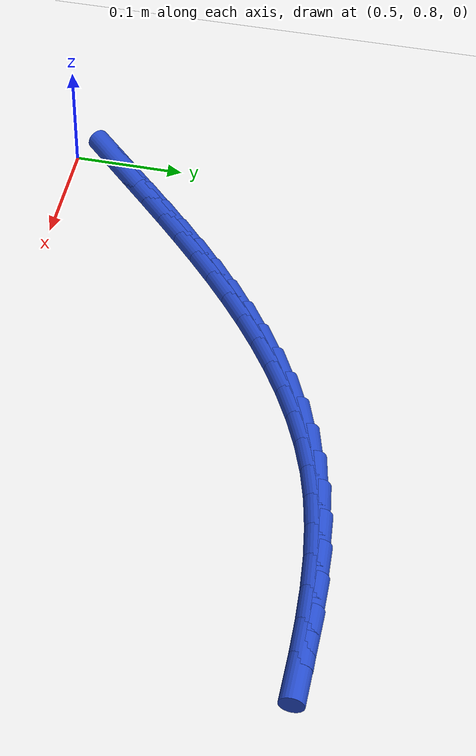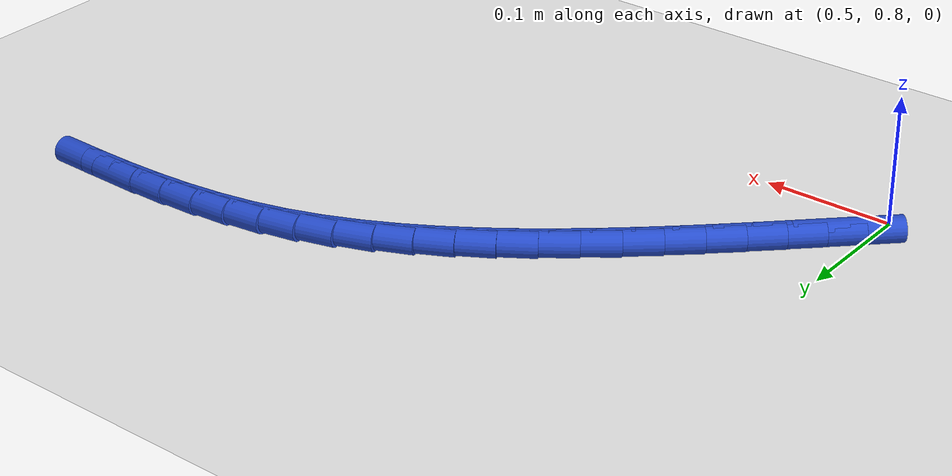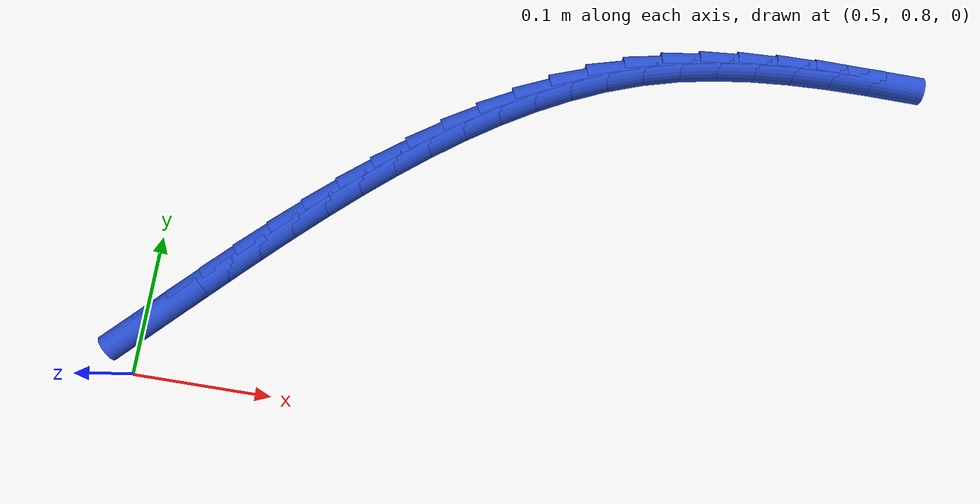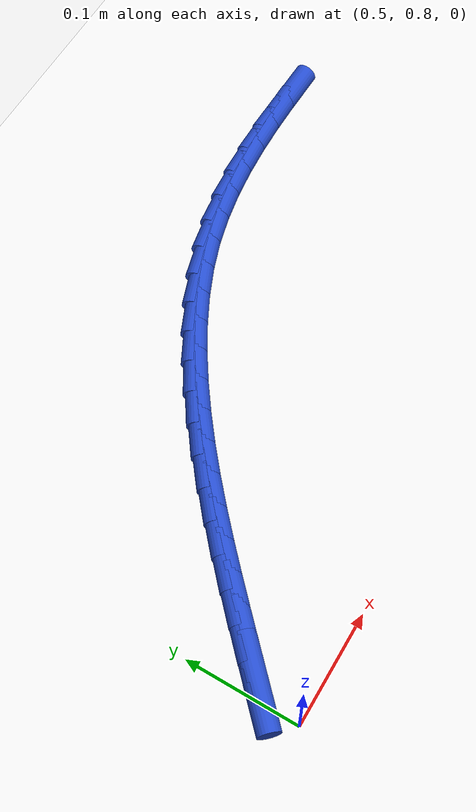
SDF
<sdf version="1.6">
 <world name="default">
  <model name="ground_plane">
   <static>1</static>
   <link name="link">
    <collision name="collision">
     <geometry><plane><normal>0 0 1</normal><size>100 100</size></plane></geometry>
     <surface><friction><ode><mu>100</mu><mu2>50</mu2></ode></friction></surface>
    </collision>
    <visual name="visual">
     <cast_shadows>0</cast_shadows>
     <geometry><plane><normal>0 0 1</normal><size>100 100</size></plane></geometry>
     <material>
      <script><uri>file://media/materials/scripts/gazebo.material</uri><name>Gazebo/WhiteGlow</name></script>
     </material>
    </visual>
   </link>
  </model>
  <model name="line">
   <link name="link_37">
    <pose>0.5096053555307523 0.8430140623932777 0.01 0 1.57 0.7771068207561972</pose>
    <collision name="collision">
     <geometry><cylinder><radius>0.01</radius><length>0.08</length></cylinder></geometry>
    </collision>
    <visual name="visual">
     <material>
      <script><name>Gazebo/Blue</name><uri>file://media/materials/scripts/gazebo.material</uri></script>
     </material>
     <geometry><cylinder><radius>0.01</radius><length>0.08</length></cylinder></geometry>
    </visual>
   </link>
   <link name="link_38">
    <pose>0.5296125613297132 0.8626922157412891 0.01 0 1.57 0.7760598767116107</pose>
    <collision name="collision">
     <geometry><cylinder><radius>0.01</radius><length>0.08</length></cylinder></geometry>
    </collision>
    <visual name="visual">
     <material>
      <script><name>Gazebo/Blue</name><uri>file://media/materials/scripts/gazebo.material</uri></script>
     </material>
     <geometry><cylinder><radius>0.01</radius><length>0.08</length></cylinder></geometry>
    </visual>
   </link>
   <link name="link_39">
    <pose>0.5497088851499345 0.8824166709018433 0.01 0 1.57 0.7699661831465208</pose>
    <collision name="collision">
     <geometry><cylinder><radius>0.01</radius><length>0.08</length></cylinder></geometry>
    </collision>
    <visual name="visual">
     <material>
      <script><name>Gazebo/Blue</name><uri>file://media/materials/scripts/gazebo.material</uri></script>
     </material>
     <geometry><cylinder><radius>0.01</radius><length>0.08</length></cylinder></geometry>
    </visual>
   </link>
   <link name="link_40">
    <pose>0.570011191369722 0.9021018421685866 0.01 0 1.57 0.7589059360338442</pose>
    <collision name="collision">
     <geometry><cylinder><radius>0.01</radius><length>0.08</length></cylinder></geometry>
    </collision>
    <visual name="visual">
     <material>
      <script><name>Gazebo/Blue</name><uri>file://media/materials/scripts/gazebo.material</uri></script>
     </material>
     <geometry><cylinder><radius>0.01</radius><length>0.08</length></cylinder></geometry>
    </visual>
   </link>
   <link name="link_41">
    <pose>0.5906363443673828 0.9216621438351669 0.01 0 1.57 0.7429858804503433</pose>
    <collision name="collision">
     <geometry><cylinder><radius>0.01</radius><length>0.08</length></cylinder></geometry>
    </collision>
    <visual name="visual">
     <material>
      <script><name>Gazebo/Blue</name><uri>file://media/materials/scripts/gazebo.material</uri></script>
     </material>
     <geometry><cylinder><radius>0.01</radius><length>0.08</length></cylinder></geometry>
    </visual>
   </link>
   <link name="link_42">
    <pose>0.6117003586816455 0.9410111224008926 0.01 0 1.57 0.7221931312060554</pose>
    <collision name="collision">
     <geometry><cylinder><radius>0.01</radius><length>0.08</length></cylinder></geometry>
    </collision>
    <visual name="visual">
     <material>
      <script><name>Gazebo/Blue</name><uri>file://media/materials/scripts/gazebo.material</uri></script>
     </material>
     <geometry><cylinder><radius>0.01</radius><length>0.08</length></cylinder></geometry>
    </visual>
   </link>
   <link name="link_43">
    <pose>0.6332770142599757 0.9600191974737042 0.01 0 1.57 0.6962564531004632</pose>
    <collision name="collision">
     <geometry><cylinder><radius>0.01</radius><length>0.08</length></cylinder></geometry>
    </collision>
    <visual name="visual">
     <material>
      <script><name>Gazebo/Blue</name><uri>file://media/materials/scripts/gazebo.material</uri></script>
     </material>
     <geometry><cylinder><radius>0.01</radius><length>0.08</length></cylinder></geometry>
    </visual>
   </link>
   <link name="link_44">
    <pose>0.6553792196328615 0.9784946311998747 0.01 0 1.57 0.6648988855503468</pose>
    <collision name="collision">
     <geometry><cylinder><radius>0.01</radius><length>0.08</length></cylinder></geometry>
    </collision>
    <visual name="visual">
     <material>
      <script><name>Gazebo/Blue</name><uri>file://media/materials/scripts/gazebo.material</uri></script>
     </material>
     <geometry><cylinder><radius>0.01</radius><length>0.08</length></cylinder></geometry>
    </visual>
   </link>
   <link name="link_45">
    <pose>0.6780151493059452 0.9962408516839789 0.01 0 1.57 0.6277749286086561</pose>
    <collision name="collision">
     <geometry><cylinder><radius>0.01</radius><length>0.08</length></cylinder></geometry>
    </collision>
    <visual name="visual">
     <material>
      <script><name>Gazebo/Blue</name><uri>file://media/materials/scripts/gazebo.material</uri></script>
     </material>
     <geometry><cylinder><radius>0.01</radius><length>0.08</length></cylinder></geometry>
    </visual>
   </link>
   <link name="link_46">
    <pose>0.7011929777848681 1.0130612870305913 0.01 0 1.57 0.5844778655012535</pose>
    <collision name="collision">
     <geometry><cylinder><radius>0.01</radius><length>0.08</length></cylinder></geometry>
    </collision>
    <visual name="visual">
     <material>
      <script><name>Gazebo/Blue</name><uri>file://media/materials/scripts/gazebo.material</uri></script>
     </material>
     <geometry><cylinder><radius>0.01</radius><length>0.08</length></cylinder></geometry>
    </visual>
   </link>
   <link name="link_47">
    <pose>0.7249208795752735 1.0287593653442872 0.01 0 1.57 0.5345697009971386</pose>
    <collision name="collision">
     <geometry><cylinder><radius>0.01</radius><length>0.08</length></cylinder></geometry>
    </collision>
    <visual name="visual">
     <material>
      <script><name>Gazebo/Blue</name><uri>file://media/materials/scripts/gazebo.material</uri></script>
     </material>
     <geometry><cylinder><radius>0.01</radius><length>0.08</length></cylinder></geometry>
    </visual>
   </link>
   <link name="link_48">
    <pose>0.7492070291828022 1.0431385147296406 0.01 0 1.57 0.4776269136732679</pose>
    <collision name="collision">
     <geometry><cylinder><radius>0.01</radius><length>0.08</length></cylinder></geometry>
    </collision>
    <visual name="visual">
     <material>
      <script><name>Gazebo/Blue</name><uri>file://media/materials/scripts/gazebo.material</uri></script>
     </material>
     <geometry><cylinder><radius>0.01</radius><length>0.08</length></cylinder></geometry>
    </visual>
   </link>
   <link name="link_49">
    <pose>0.7740596011130966 1.056002163291227 0.01 0 1.57 0.41330760777728537</pose>
    <collision name="collision">
     <geometry><cylinder><radius>0.01</radius><length>0.08</length></cylinder></geometry>
    </collision>
    <visual name="visual">
     <material>
      <script><name>Gazebo/Blue</name><uri>file://media/materials/scripts/gazebo.material</uri></script>
     </material>
     <geometry><cylinder><radius>0.01</radius><length>0.08</length></cylinder></geometry>
    </visual>
   </link>
   <link name="link_50">
    <pose>0.7994867698717989 1.0671537391336208 0.01 0 1.57 0.3414432003201853</pose>
    <collision name="collision">
     <geometry><cylinder><radius>0.01</radius><length>0.08</length></cylinder></geometry>
    </collision>
    <visual name="visual">
     <material>
      <script><name>Gazebo/Blue</name><uri>file://media/materials/scripts/gazebo.material</uri></script>
     </material>
     <geometry><cylinder><radius>0.01</radius><length>0.08</length></cylinder></geometry>
    </visual>
   </link>
   <link name="link_51">
    <pose>0.8254967099645506 1.076396670361396 0.01 0 1.57 0.2639546696373786</pose>
    <collision name="collision">
     <geometry><cylinder><radius>0.01</radius><length>0.08</length></cylinder></geometry>
    </collision>
    <visual name="visual">
     <material>
      <script><name>Gazebo/Blue</name><uri>file://media/materials/scripts/gazebo.material</uri></script>
     </material>
     <geometry><cylinder><radius>0.01</radius><length>0.08</length></cylinder></geometry>
    </visual>
   </link>
   <link name="link_52">
    <pose>0.8520881940674213 1.0835832996119266 0.01 0 1.57 0.19201581246392607</pose>
    <collision name="collision">
     <geometry><cylinder><radius>0.01</radius><length>0.08</length></cylinder></geometry>
    </collision>
    <visual name="visual">
     <material>
      <script><name>Gazebo/Blue</name><uri>file://media/materials/scripts/gazebo.material</uri></script>
     </material>
     <geometry><cylinder><radius>0.01</radius><length>0.08</length></cylinder></geometry>
    </visual>
   </link>
   <link name="link_53">
    <pose>0.879204441094795 1.08885499691632 0.01 0 1.57 0.1300101135953835</pose>
    <collision name="collision">
     <geometry><cylinder><radius>0.01</radius><length>0.08</length></cylinder></geometry>
    </collision>
    <visual name="visual">
     <material>
      <script><name>Gazebo/Blue</name><uri>file://media/materials/scripts/gazebo.material</uri></script>
     </material>
     <geometry><cylinder><radius>0.01</radius><length>0.08</length></cylinder></geometry>
    </visual>
   </link>
   <link name="link_54">
    <pose>0.9067683384127583 1.0924589104607076 0.01 0 1.57 0.07800437647326312</pose>
    <collision name="collision">
     <geometry><cylinder><radius>0.01</radius><length>0.08</length></cylinder></geometry>
    </collision>
    <visual name="visual">
     <material>
      <script><name>Gazebo/Blue</name><uri>file://media/materials/scripts/gazebo.material</uri></script>
     </material>
     <geometry><cylinder><radius>0.01</radius><length>0.08</length></cylinder></geometry>
    </visual>
   </link>
   <link name="link_55">
    <pose>0.9347027429907334 1.0946423465747617 0.01 0 1.57 0.03577448857978379</pose>
    <collision name="collision">
     <geometry><cylinder><radius>0.01</radius><length>0.08</length></cylinder></geometry>
    </collision>
    <visual name="visual">
     <material>
      <script><name>Gazebo/Blue</name><uri>file://media/materials/scripts/gazebo.material</uri></script>
     </material>
     <geometry><cylinder><radius>0.01</radius><length>0.08</length></cylinder></geometry>
    </visual>
   </link>
   <link name="link_56">
    <pose>0.9629305117981425 1.095652611588152 0.01 0 1.57 0.002967234719183303</pose>
    <collision name="collision">
     <geometry><cylinder><radius>0.01</radius><length>0.08</length></cylinder></geometry>
    </collision>
    <visual name="visual">
     <material>
      <script><name>Gazebo/Blue</name><uri>file://media/materials/scripts/gazebo.material</uri></script>
     </material>
     <geometry><cylinder><radius>0.01</radius><length>0.08</length></cylinder></geometry>
    </visual>
   </link>
   <link name="link_57">
    <pose>0.991374501804408 1.095737011830551 0.01 0 1.57 -0.020784075329159046</pose>
    <collision name="collision">
     <geometry><cylinder><radius>0.01</radius><length>0.08</length></cylinder></geometry>
    </collision>
    <visual name="visual">
     <material>
      <script><name>Gazebo/Blue</name><uri>file://media/materials/scripts/gazebo.material</uri></script>
     </material>
     <geometry><cylinder><radius>0.01</radius><length>0.08</length></cylinder></geometry>
    </visual>
   </link>
  </model>
 </world>
</sdf>
